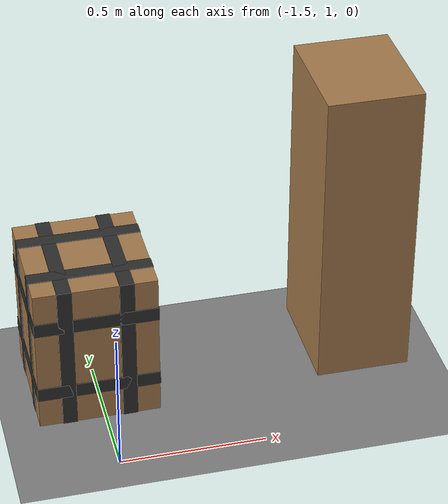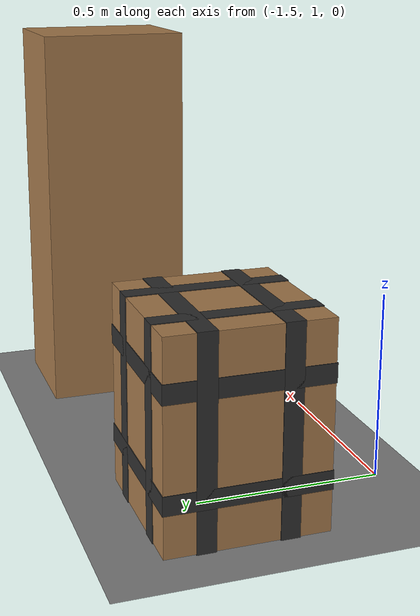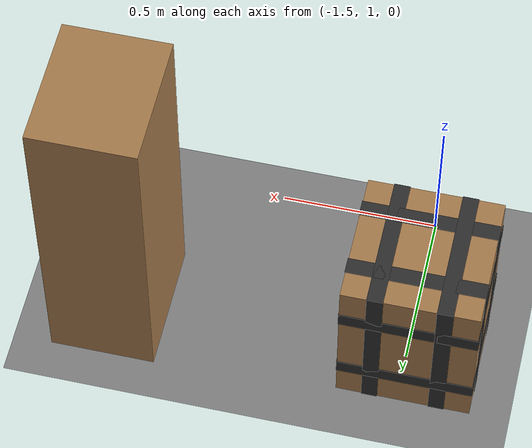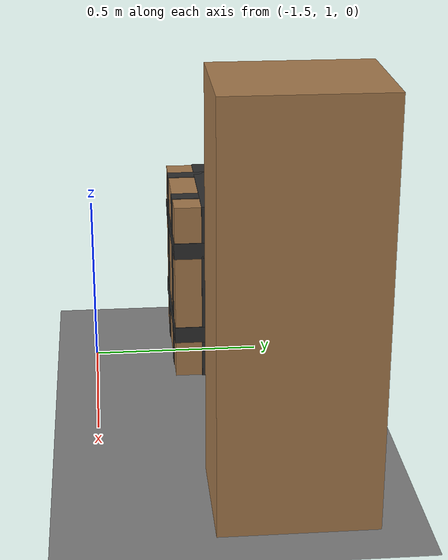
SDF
<sdf version="1.9">
 <world name="ecps295_lowbox_s46_monitor">
  <model name="ground_plane">
   <static>true</static>
   <link name="link">
    <collision name="collision">
     <geometry><plane><normal>0 0 1</normal><size>50 50</size></plane></geometry>
    </collision>
    <visual name="visual">
     <geometry><plane><normal>0 0 1</normal><size>50 50</size></plane></geometry>
     <material><ambient>0.5 0.5 0.5 1</ambient><diffuse>0.5 0.5 0.5 1</diffuse></material>
    </visual>
   </link>
  </model>
  <model name="lb0">
   <static>true</static>
   <pose>-0.57 1.49 0.55 0 0 0</pose>
   <link name="link">
    <collision name="c"><geometry><box><size>0.33 0.41 1.1</size></box></geometry></collision>
    <visual name="v">
     <geometry><box><size>0.33 0.41 1.1</size></box></geometry>
     <material><ambient>0.65 0.48 0.30 1</ambient><diffuse>0.65 0.48 0.30 1</diffuse></material>
    </visual>
   </link>
  </model>
  <model name="lb3">
   <static>true</static>
   <pose>-1.52 1.45 0.272 0 0 0</pose>
   <link name="link">
    <collision name="c"><geometry><box><size>0.42 0.42 0.54</size></box></geometry></collision>
    <visual name="v">
     <geometry><box><size>0.42 0.42 0.54</size></box></geometry>
     <material><ambient>0.65 0.48 0.30 1</ambient><diffuse>0.65 0.48 0.30 1</diffuse></material>
    </visual>
    <visual name="tape_ring0">
     <pose>0.000 0.000 -0.135 0 0 0</pose>
     <geometry><box><size>0.424 0.424 0.050</size></box></geometry>
     <material><ambient>0.18 0.18 0.18 1</ambient><diffuse>0.18 0.18 0.18 1</diffuse></material>
    </visual>
    <visual name="tape_bx0">
     <pose>-0.105 0.000 0.000 0 0 0</pose>
     <geometry><box><size>0.050 0.424 0.544</size></box></geometry>
     <material><ambient>0.18 0.18 0.18 1</ambient><diffuse>0.18 0.18 0.18 1</diffuse></material>
    </visual>
    <visual name="tape_by0">
     <pose>0.000 -0.105 0.000 0 0 0</pose>
     <geometry><box><size>0.424 0.050 0.544</size></box></geometry>
     <material><ambient>0.18 0.18 0.18 1</ambient><diffuse>0.18 0.18 0.18 1</diffuse></material>
    </visual>
    <visual name="tape_ring1">
     <pose>0.000 0.000 0.135 0 0 0</pose>
     <geometry><box><size>0.424 0.424 0.050</size></box></geometry>
     <material><ambient>0.18 0.18 0.18 1</ambient><diffuse>0.18 0.18 0.18 1</diffuse></material>
    </visual>
    <visual name="tape_bx1">
     <pose>0.105 0.000 0.000 0 0 0</pose>
     <geometry><box><size>0.050 0.424 0.544</size></box></geometry>
     <material><ambient>0.18 0.18 0.18 1</ambient><diffuse>0.18 0.18 0.18 1</diffuse></material>
    </visual>
    <visual name="tape_by1">
     <pose>0.000 0.105 0.000 0 0 0</pose>
     <geometry><box><size>0.424 0.050 0.544</size></box></geometry>
     <material><ambient>0.18 0.18 0.18 1</ambient><diffuse>0.18 0.18 0.18 1</diffuse></material>
    </visual>
   </link>
  </model>
 </world>
</sdf>
